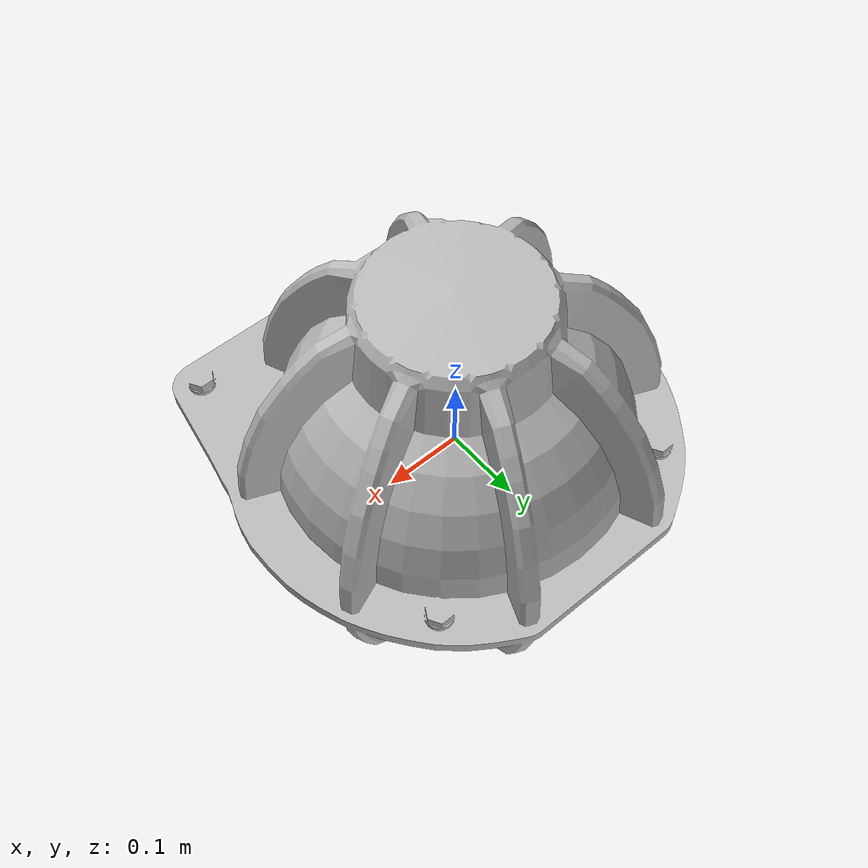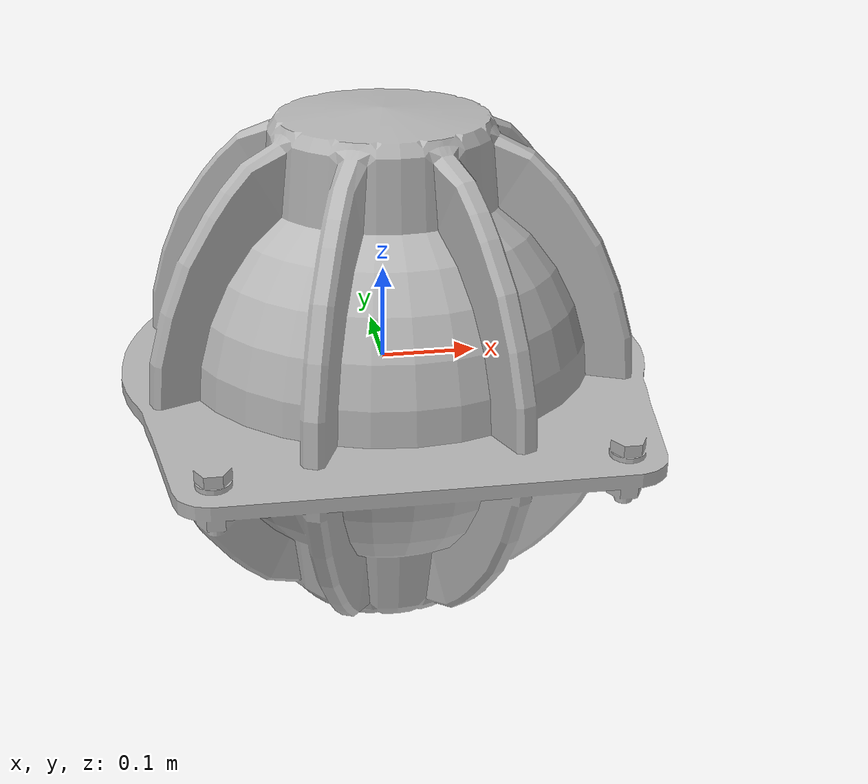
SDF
<?xml version="1.0"?>
<sdf version="1.6">
  <model name="hardhat_superribbed">
    <static>false</static>
    <link name="base_link">
      <inertial>
        <mass>17.7</mass>
        <inertia>
          <ixx>0.55</ixx>
          <ixy>0.0</ixy>
          <ixz>0.0</ixz>
          <iyy>0.55</iyy>
          <iyz>0.0</iyz>
          <izz>0.55</izz>
        </inertia>
      </inertial>
      <visual name="visual">
        <geometry>
           <mesh>
            <uri>file://hardhat_superribbed/meshes/hardhat_superribbed.dae</uri>
          </mesh>
        </geometry>
      </visual>
      <collision name="collision">
        <pose>0 0 0 0 0 0</pose>
        <geometry>
          <mesh>
	    <uri>file://hardhat_superribbed/meshes/hardhat_superribbed_collision.dae</uri>
          </mesh>
        </geometry>
      </collision>
    </link>
  </model>
</sdf>
